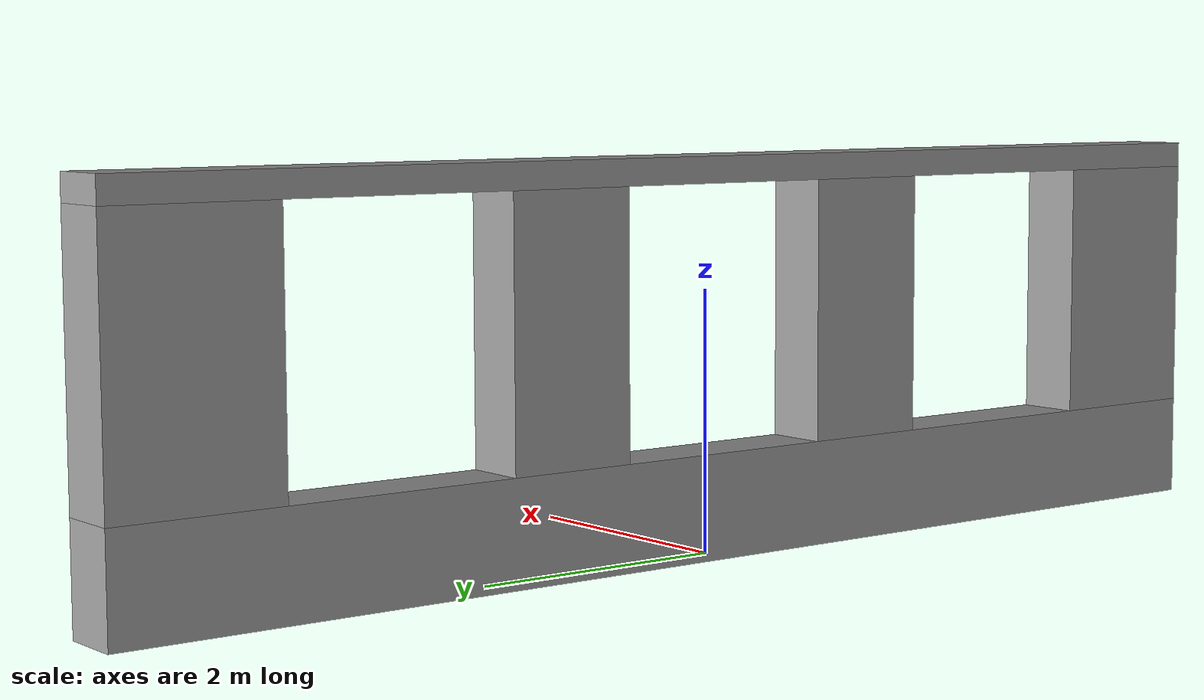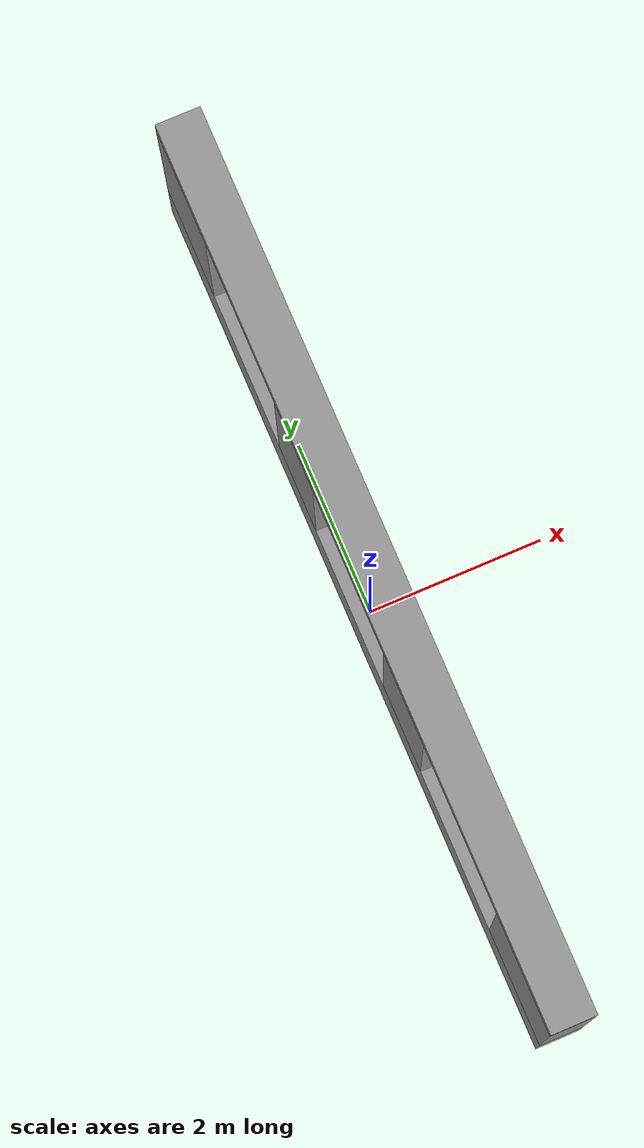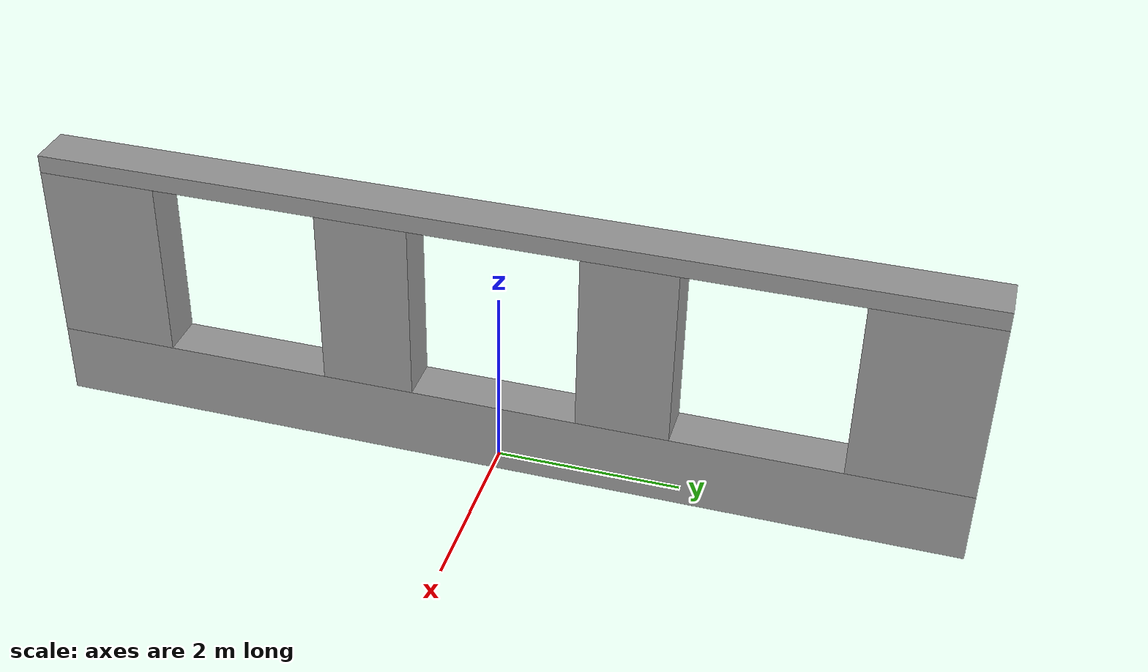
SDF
<?xml version="1.0" ?>
<sdf version="1.5">
  <model name="AIGC2_window">
    <static>true</static>
    <link name="link">
      <pose>0 0 0.4 0 0 0</pose>
      <collision name="collision">
        <geometry>
          <box>
            <size>0.5 10.0 0.8</size>
          </box>
        </geometry>
      </collision>
      <visual name="visual">
        <cast_shadows>false</cast_shadows>
        <geometry>
          <box>
            <size>0.5 10.0 0.8</size>
          </box>
        </geometry>
        <material>
          <script>
            <uri>model://AIGC2_window/materials/scripts</uri>
            <uri>model://AIGC2_window/materials/textures</uri>
            <name>vrc/grey_wall</name>
          </script>
        </material>
      </visual>
    </link>

    <link name="link1">
      <pose>0 0 2.9 0 0 0</pose>
      <collision name="collision">
        <geometry>
          <box>
            <size>0.5 10.0 0.2</size>
          </box>
        </geometry>
      </collision>
      <visual name="visual">
        <cast_shadows>false</cast_shadows>
        <geometry>
          <box>
            <size>0.5 10.0 0.2</size>
          </box>
        </geometry>
        <material>
          <script>
            <uri>model://AIGC2_window/materials/scripts</uri>
            <uri>model://AIGC2_window/materials/textures</uri>
            <name>vrc/grey_wall</name>
          </script>
        </material>
      </visual>
    </link>

    <link name="link2">
      <pose>0 1.4 1.8 0 0 0</pose>
      <collision name="collision">
        <geometry>
          <box>
            <size>0.5 1.0 2.0</size>
          </box>
        </geometry>
      </collision>
      <visual name="visual">
        <cast_shadows>false</cast_shadows>
        <geometry>
          <box>
            <size>0.5 1.0 2.0</size>
          </box>
        </geometry>
        <material>
          <script>
            <uri>model://AIGC2_window/materials/scripts</uri>
            <uri>model://AIGC2_window/materials/textures</uri>
            <name>vrc/grey_wall</name>
          </script>
        </material>
      </visual>
    </link>

    <link name="link3">
      <pose>0 -1.4 1.8 0 0 0</pose>
      <collision name="collision">
        <geometry>
          <box>
            <size>0.5 1.0 2.0</size>
          </box>
        </geometry>
      </collision>
      <visual name="visual">
        <cast_shadows>false</cast_shadows>
        <geometry>
          <box>
            <size>0.5 1.0 2.0</size>
          </box>
        </geometry>
        <material>
          <script>
            <uri>model://AIGC2_window/materials/scripts</uri>
            <uri>model://AIGC2_window/materials/textures</uri>
            <name>vrc/grey_wall</name>
          </script>
        </material>
      </visual>
    </link>

    <link name="link4">
      <pose>0 4.35 1.8 0 0 0</pose>
      <collision name="collision">
        <geometry>
          <box>
            <size>0.5 1.3 2.0</size>
          </box>
        </geometry>
      </collision>
      <visual name="visual">
        <cast_shadows>false</cast_shadows>
        <geometry>
          <box>
            <size>0.5 1.3 2.0</size>
          </box>
        </geometry>
        <material>
          <script>
            <uri>model://AIGC2_window/materials/scripts</uri>
            <uri>model://AIGC2_window/materials/textures</uri>
            <name>vrc/grey_wall</name>
          </script>
        </material>
      </visual>
    </link>

    <link name="link5">
      <pose>0 -4.35 1.8 0 0 0</pose>
      <collision name="collision">
        <geometry>
          <box>
            <size>0.5 1.3 2.0</size>
          </box>
        </geometry>
      </collision>
      <visual name="visual">
        <cast_shadows>false</cast_shadows>
        <geometry>
          <box>
            <size>0.5 1.3 2.0</size>
          </box>
        </geometry>
        <material>
          <script>
            <uri>model://AIGC2_window/materials/scripts</uri>
            <uri>model://AIGC2_window/materials/textures</uri>
            <name>vrc/grey_wall</name>
          </script>
        </material>
      </visual>
    </link>

  </model>
</sdf>
